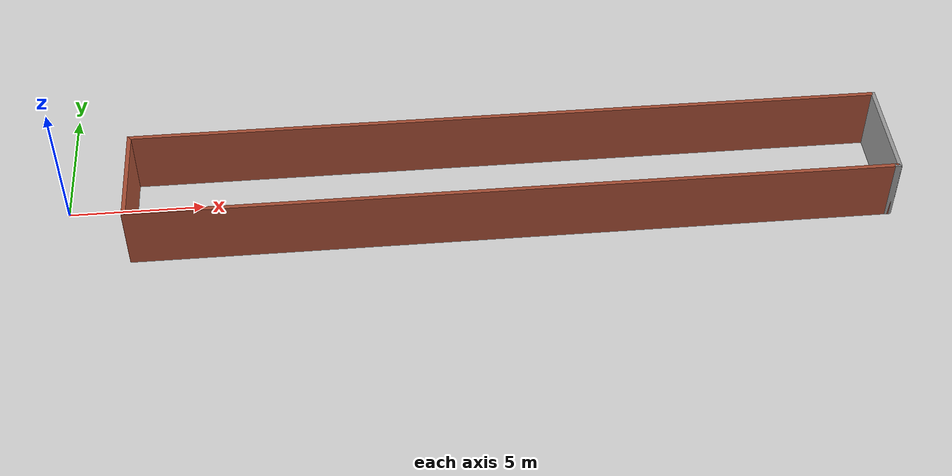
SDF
<?xml version='1.0'?>
<sdf version='1.6'>
  <model name='corridor4x28'>
    <pose frame=''>16.4445 -0.587213 0 0 -0 0</pose>
    <link name='Wall_11'>
      <collision name='Wall_11_Collision'>
        <geometry>
          <box>
            <size>4 0.15 2.5</size>
          </box>
        </geometry>
        <pose frame=''>0 0 1.25 0 -0 0</pose>
      </collision>
      <visual name='Wall_11_Visual'>
        <pose frame=''>0 0 1.25 0 -0 0</pose>
        <geometry>
          <box>
            <size>4 0.15 2.5</size>
          </box>
        </geometry>
        <material>
          <script>
            <uri>file://media/materials/scripts/gazebo.material</uri>
            <name>Gazebo/Bricks</name>
          </script>
          <ambient>1 1 1 1</ambient>
        </material>
        <meta>
          <layer>0</layer>
        </meta>
      </visual>
      <pose frame=''>-13.975 0 0 0 0 -1.5708</pose>
    </link>
    <link name='Wall_12'>
      <collision name='Wall_12_Collision'>
        <geometry>
          <box>
            <size>28 0.15 2.5</size>
          </box>
        </geometry>
        <pose frame=''>0 0 1.25 0 -0 0</pose>
      </collision>
      <visual name='Wall_12_Visual'>
        <pose frame=''>0 0 1.25 0 -0 0</pose>
        <geometry>
          <box>
            <size>28 0.15 2.5</size>
          </box>
        </geometry>
        <material>
          <script>
            <uri>file://media/materials/scripts/gazebo.material</uri>
            <name>Gazebo/Bricks</name>
          </script>
          <ambient>1 1 1 1</ambient>
        </material>
        <meta>
          <layer>0</layer>
        </meta>
      </visual>
      <pose frame=''>-0.05 -1.925 0 0 -0 0</pose>
    </link>
    <link name='Wall_13'>
      <collision name='Wall_13_Collision'>
        <geometry>
          <box>
            <size>0.25 0.15 2.5</size>
          </box>
        </geometry>
        <pose frame=''>0 0 1.25 0 -0 0</pose>
      </collision>
      <visual name='Wall_13_Visual'>
        <pose frame=''>0 0 1.25 0 -0 0</pose>
        <geometry>
          <box>
            <size>0.25 0.15 2.5</size>
          </box>
        </geometry>
        <material>
          <script>
            <uri>file://media/materials/scripts/gazebo.material</uri>
            <name>Gazebo/Grey</name>
          </script>
          <ambient>1 1 1 1</ambient>
        </material>
        <meta>
          <layer>0</layer>
        </meta>
      </visual>
      <pose frame=''>13.925 -1.925 0 0 -0 0</pose>
    </link>
    <link name='Wall_15'>
      <collision name='Wall_15_Collision'>
        <geometry>
          <box>
            <size>0.25 0.15 2.5</size>
          </box>
        </geometry>
        <pose frame=''>0 0 1.25 0 -0 0</pose>
      </collision>
      <visual name='Wall_15_Visual'>
        <pose frame=''>0 0 1.25 0 -0 0</pose>
        <geometry>
          <box>
            <size>0.25 0.15 2.5</size>
          </box>
        </geometry>
        <material>
          <script>
            <uri>file://media/materials/scripts/gazebo.material</uri>
            <name>Gazebo/Grey</name>
          </script>
          <ambient>1 1 1 1</ambient>
        </material>
        <meta>
          <layer>0</layer>
        </meta>
      </visual>
      <pose frame=''>13.925 -1.925 0 0 -0 0</pose>
    </link>
    <link name='Wall_16'>
      <collision name='Wall_16_Collision'>
        <geometry>
          <box>
            <size>4 0.15 2.5</size>
          </box>
        </geometry>
        <pose frame=''>0 0 1.25 0 -0 0</pose>
      </collision>
      <visual name='Wall_16_Visual'>
        <pose frame=''>0 0 1.25 0 -0 0</pose>
        <geometry>
          <box>
            <size>4 0.15 2.5</size>
          </box>
        </geometry>
        <material>
          <script>
            <uri>file://media/materials/scripts/gazebo.material</uri>
            <name>Gazebo/Grey</name>
          </script>
          <ambient>1 1 1 1</ambient>
        </material>
        <meta>
          <layer>0</layer>
        </meta>
      </visual>
      <pose frame=''>13.975 0 0 0 -0 1.5708</pose>
    </link>
    <link name='Wall_8'>
      <collision name='Wall_8_Collision'>
        <geometry>
          <box>
            <size>28 0.15 2.5</size>
          </box>
        </geometry>
        <pose frame=''>0 0 1.25 0 -0 0</pose>
      </collision>
      <visual name='Wall_8_Visual'>
        <pose frame=''>0 0 1.25 0 -0 0</pose>
        <geometry>
          <box>
            <size>28 0.15 2.5</size>
          </box>
        </geometry>
        <material>
          <script>
            <uri>file://media/materials/scripts/gazebo.material</uri>
            <name>Gazebo/Bricks</name>
          </script>
          <ambient>1 1 1 1</ambient>
        </material>
        <meta>
          <layer>0</layer>
        </meta>
      </visual>
      <pose frame=''>-0.05 1.925 0 0 -0 0</pose>
    </link>
    <static>1</static>
  </model>
</sdf>
